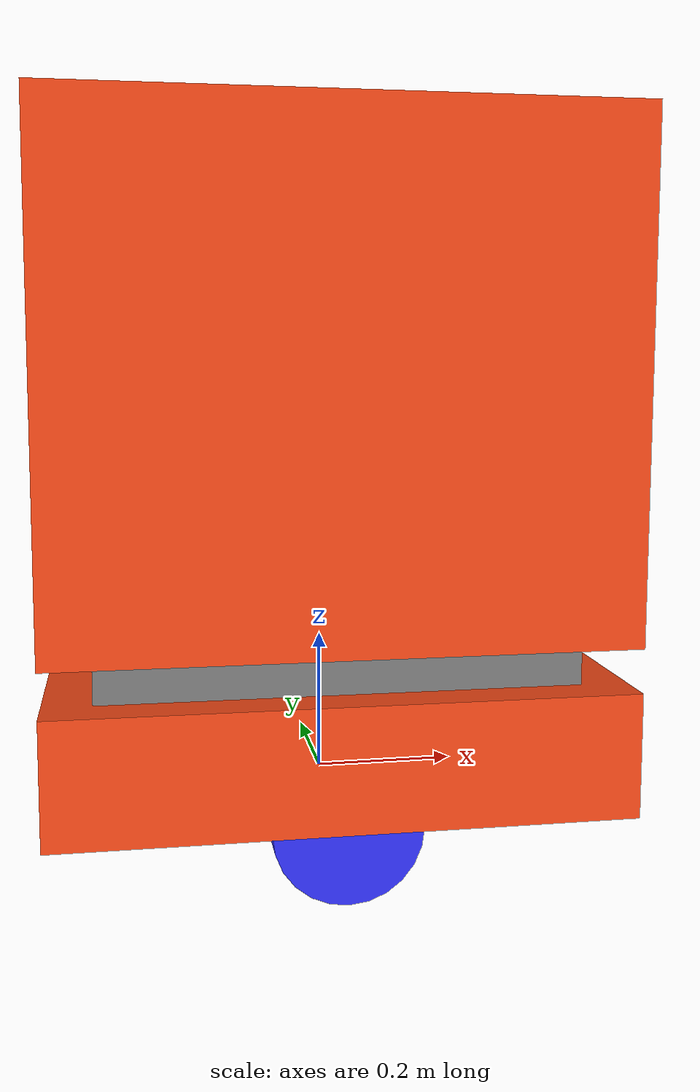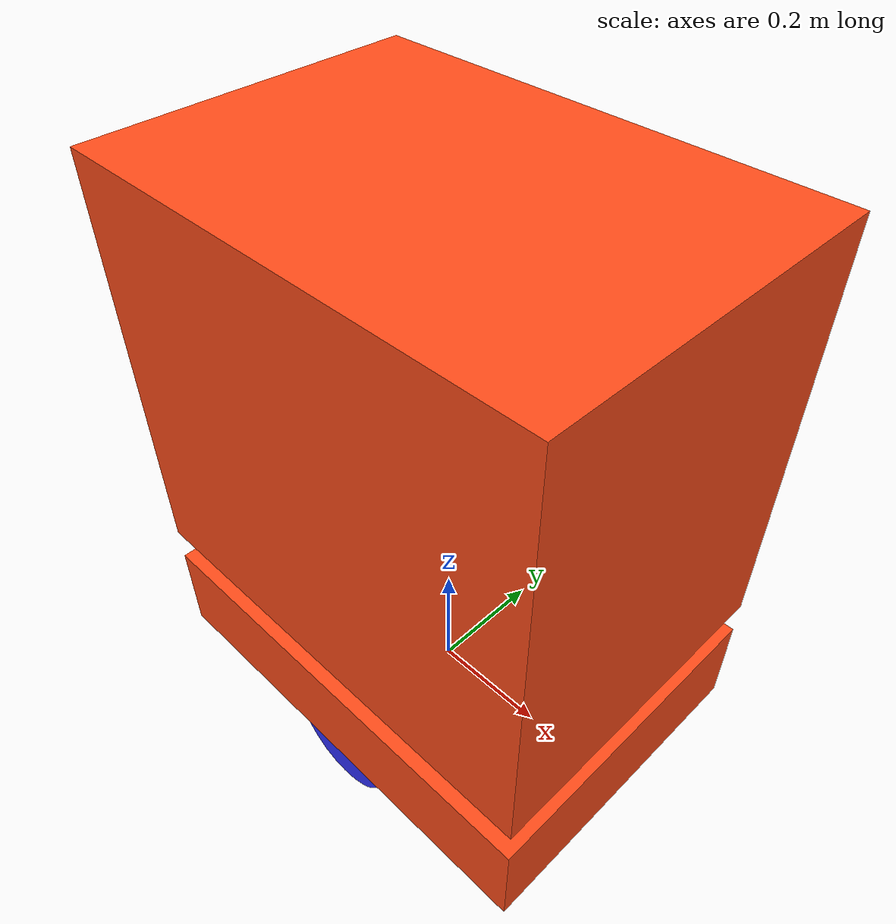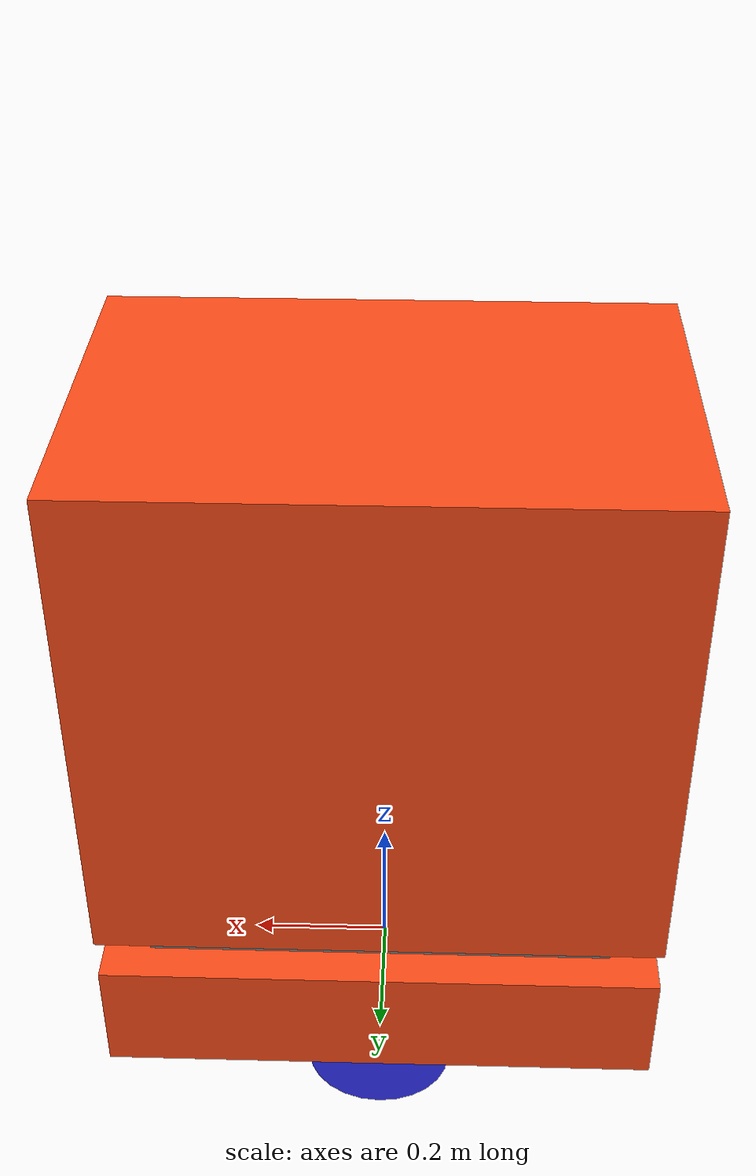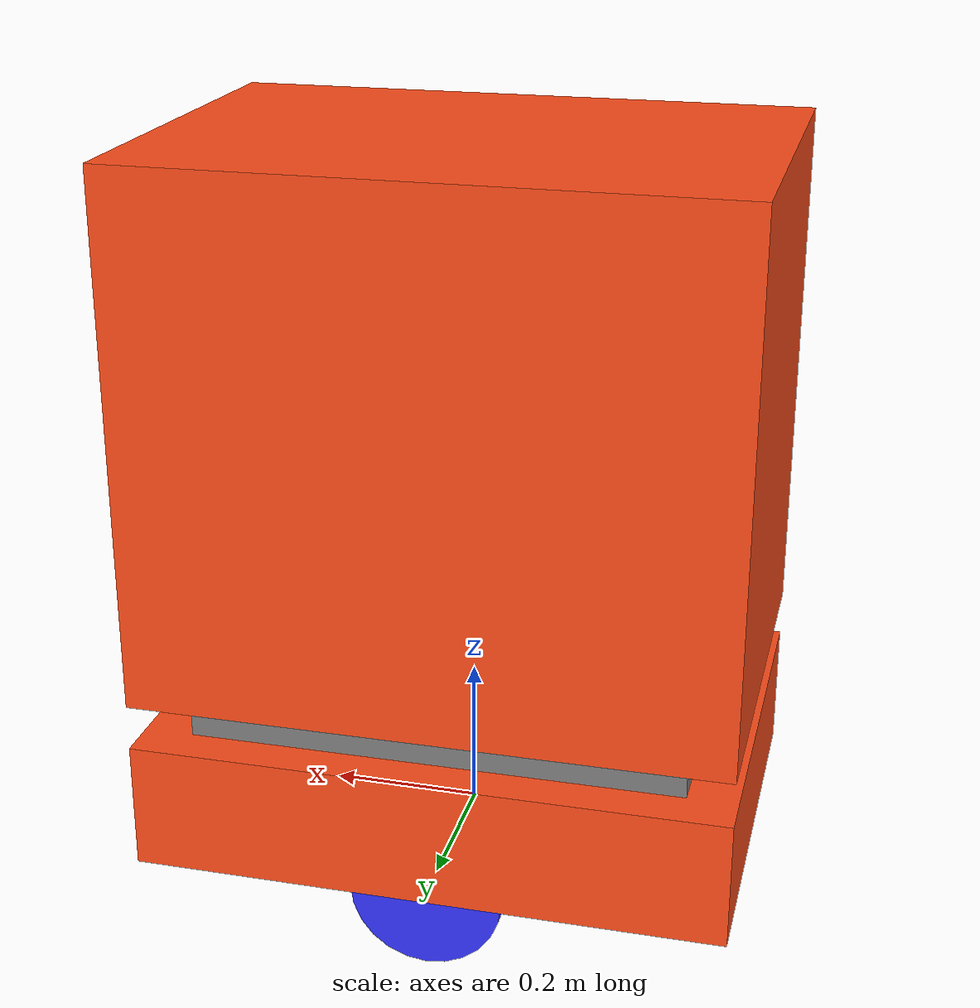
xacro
<?xml version="1.0"?>
<robot xmlns:xacro="http://www.ros.org/wiki/xacro" >

    <xacro:include filename="inertial_macros.xacro"/>
    <xacro:property name="chassis_length" value="0.78"/>
    <xacro:property name="chassis_width" value="0.55"/>
    <xacro:property name="chassis_height" value="0.17"/>
    <xacro:property name="chassis_mass" value="10.0"/>

    <xacro:property name="wheel_radius" value="0.10"/>
    <xacro:property name="wheel_thickness" value="0.07"/>
    <xacro:property name="wheel_mass" value="1"/>
    <xacro:property name="wheel_offset_x" value="0.225"/> <!-- robot_width/2 - 0.05 -->
    <xacro:property name="wheel_offset_y" value="0.225"/>
    <xacro:property name="wheel_offset_z" value="0.01"/>

    <xacro:property name="caster_wheel_radius" value="0.1"/>
    <xacro:property name="caster_wheel_mass" value="2"/>
    <xacro:property name="caster_wheel_offset_x" value="0.25"/>

    <material name="white">
        <color rgba="1 1 1 1" />
    </material>

    <material name="orange">
        <color rgba="1 0.3 0.1 1"/>
    </material>

    <material name="blue">
        <color rgba="0.2 0.2 1 1"/>
    </material>

    <material name="black">
        <color rgba="0 0 0 1"/>
    </material>

    <material name="red">
        <color rgba="1 0 0 1"/>
    </material>

    <material name="grey">
        <color rgba="0.5 0.5 0.5 1"/>
    </material>

    <!-- BASE LINK -->

    <link name="base_link">
    </link>

    <!-- CHASSIS LINK -->

    <joint name="chassis_joint" type="fixed">
        <parent link="base_link"/>
        <child link="chassis"/>
        <origin xyz=" 0 0 0"/>
    </joint>

    <link name="chassis">
            <visual>
                <origin xyz=" 0 0 ${chassis_height/2}"/>
                <geometry>
                    <box size="${chassis_length} ${chassis_width} ${chassis_height}"/>
                </geometry>
                <material name="orange"/>
            </visual>
            <collision>
                <origin xyz=" 0 0 ${chassis_height/2}"/>
                <geometry>
                    <box size="${chassis_length} ${chassis_width} ${chassis_height}"/>
                </geometry>
            </collision>
            <xacro:inertial_box mass="${chassis_mass}" x="${chassis_length}" y="${chassis_width}" z="${chassis_height}">
                <origin xyz="0 0 0" rpy="0 0 0"/>
            </xacro:inertial_box>
    </link>

    <gazebo reference="chassis">
        <material>Gazebo/Orange</material>
    </gazebo>

    <!-- Right Wheel -->
    <joint name="right_wheel_joint" type="continuous">
            <parent link="base_link"/>
            <child link="right_wheel"/>
            <origin xyz="0 ${-wheel_offset_y} 0" rpy="${pi/2} 0 0" />
            <axis xyz="0 0 -1"/>
    </joint>

    <link name="right_wheel">
        <visual>
            <geometry>
                <cylinder radius="${wheel_radius}" length="${wheel_thickness}"/>
            </geometry>
            <material name="blue"/>
        </visual>
        <collision>
            <geometry>
                <cylinder radius="${wheel_radius}" length="${wheel_thickness}"/>
            </geometry>
        </collision>
        <xacro:inertial_cylinder mass="${wheel_mass}" length="${wheel_thickness}" radius="${wheel_radius}">
            <origin xyz="0 0 0" rpy="0 0 0"/>
        </xacro:inertial_cylinder>
    </link>

    <gazebo reference="right_wheel">
        <material>Gazebo/Blue</material>
    </gazebo>

    <!-- Left Wheel -->
    <joint name="left_wheel_joint" type="continuous">
        <parent link="base_link"/>
        <child link="left_wheel"/>
        <origin xyz="0 ${wheel_offset_y} 0" rpy="-${pi/2} 0 0" />
        <axis xyz="0 0 1"/>
    </joint>

    <link name="left_wheel">
        <visual>
            <geometry>
                <cylinder radius="${wheel_radius}" length="${wheel_thickness}"/>
            </geometry>
            <material name="blue"/>
        </visual>
        <collision>
            <geometry>
                <sphere radius="${wheel_radius}"/>
            </geometry>
        </collision>
        <xacro:inertial_cylinder mass="${wheel_mass}" length="${wheel_thickness}" radius="${wheel_radius}">
            <origin xyz="0 0 0" rpy="0 0 0"/>
        </xacro:inertial_cylinder>
    </link>

    <gazebo reference="left_wheel">
        <material>Gazebo/Blue</material>
    </gazebo>

    <!-- Caster wheel front -->
    <joint name="caster_wheel_joint_front" type="fixed">
        <parent link="chassis"/>
        <child link="caster_wheel_front"/>
        <origin xyz="${caster_wheel_offset_x} 0 0"/>
    </joint>

    <link name="caster_wheel_front">
        <visual>
            <geometry>
                <sphere radius="${caster_wheel_radius}"/>
            </geometry>
            <material name="white"/>
        </visual>
        <collision>
            <geometry>
                <sphere radius="${caster_wheel_radius}"/>
            </geometry>
        </collision>
        <xacro:inertial_sphere mass="${caster_wheel_mass}" radius="${caster_wheel_radius}">
            <origin xyz="0 0 0" rpy="0 0 0"/>
        </xacro:inertial_sphere>
    </link>

    <gazebo reference="caster_wheel_front">
        <material>Gazebo/White</material>
        <mu1 value="0.02"/>
        <mu2 value="0.02"/>
    </gazebo>

    <!-- Caster wheel back -->
    <joint name="caster_wheel_joint_back" type="fixed">
        <parent link="chassis"/>
        <child link="caster_wheel_back"/>
        <origin xyz="${-caster_wheel_offset_x} 0 0"/>
    </joint>

    <link name="caster_wheel_back">
        <visual>
            <geometry>
                <sphere radius="${caster_wheel_radius}"/>
            </geometry>
            <material name="white"/>
        </visual>
        <collision>
            <geometry>
                <sphere radius="${caster_wheel_radius}"/>
            </geometry>
        </collision>
        <xacro:inertial_sphere mass="${caster_wheel_mass}" radius="${caster_wheel_radius}">
            <origin xyz="0 0 0" rpy="0 0 0"/>
        </xacro:inertial_sphere>
    </link>

    <gazebo reference="caster_wheel_back">
        <material>Gazebo/White</material>
        <mu1 value="0.02"/>
        <mu2 value="0.02"/>
    </gazebo>

    <!-- Base to Chassis -->
    <joint name="base_to_chassis" type="fixed">
        <parent link="base_link"/>
        <child link="chassis_conect"/>
        <origin xyz="0 0 0.2" rpy="0 0 0"/>
    </joint>

    <link name="chassis_conect">
        <visual>
            <geometry>
                <box size="0.65 0.44 0.06"/>
            </geometry>
            <material name="grey"/>
        </visual>
        <collision>
            <geometry>
                <box size="0.65 0.44 0.06"/>
            </geometry>
        </collision>
        <xacro:inertial_box mass="0.1" x="0.65" y="0.44" z="0.06">
            <origin xyz="0 0 0" rpy="0 0 0"/>
        </xacro:inertial_box>
    </link>

    <gazebo reference="chassis_conect">
        <material>Gazebo/Grey</material>
    </gazebo>

    <!-- Cargo -->
    <joint name="chassis_to_cargo" type="fixed">
        <parent link="chassis_conect"/>
        <child link="cargo"/>
        <origin xyz="0 0 0.38" rpy="0 0 0"/>
    </joint>

    <link name="cargo">
        <visual>
            <geometry>
                <box size="0.78 0.55 0.7"/>
            </geometry>
            <material name="orange"/>
        </visual>
        <collision>
            <geometry>
                <box size="0.78 0.55 0.7"/>
            </geometry>
        </collision>
        <xacro:inertial_box mass="1" x="0.78" y="0.55" z="0.7">
            <origin xyz="0 0 0" rpy="0 0 0"/>
        </xacro:inertial_box>
    </link>

    <!-- Laser Frame -->

</robot>
